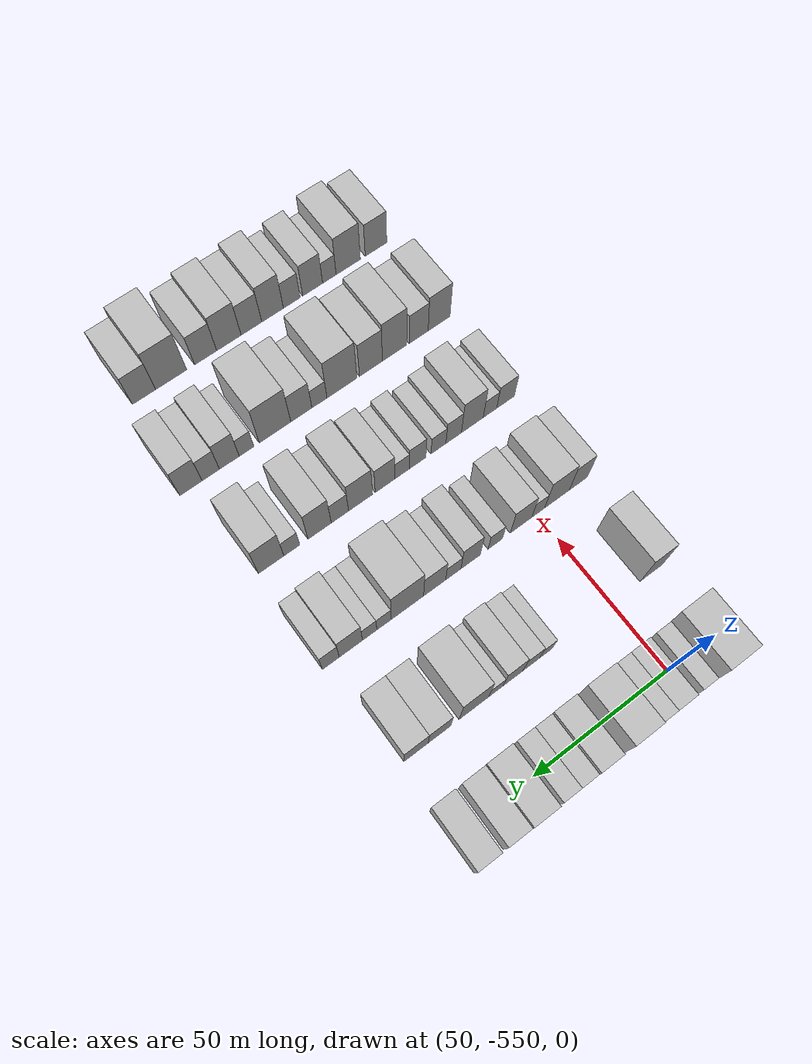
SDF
<sdf version="1.6">
 <world name="default">
  <model name="building_1">
   <static>1</static>
   <pose>50.0000 -562.3238 0 0.000000 0.000000 0.000000</pose>
   <link name="link">
    <pose>0 0 12.00 0 0 0</pose>
    <collision name="collision"><geometry><box><size>20.0000 11.3523 24.0000</size></box></geometry></collision>
    <visual name="visual">
     <cast_shadows>0</cast_shadows>
     <geometry><box><size>20.0000 11.3523 24.0000</size></box></geometry>
     <material>
      <script>
       <uri>model://HANNAS_wall/materials/scripts</uri>
       <uri>model://HANNAS_wall/materials/textures</uri>
       <name>vrc/HANNAS_wall</name>
      </script>
     </material>
    </visual>
   </link>
  </model>
  <model name="building_2">
   <static>1</static>
   <pose>50.0000 -553.8792 0 0.000000 0.000000 0.000000</pose>
   <link name="link">
    <pose>0 0 6.00 0 0 0</pose>
    <collision name="collision"><geometry><box><size>20.0000 5.5368 12.0000</size></box></geometry></collision>
    <visual name="visual">
     <cast_shadows>0</cast_shadows>
     <geometry><box><size>20.0000 5.5368 12.0000</size></box></geometry>
     <material>
      <script>
       <uri>model://HANNAS_wall/materials/scripts</uri>
       <uri>model://HANNAS_wall/materials/textures</uri>
       <name>vrc/HANNAS_wall</name>
      </script>
     </material>
    </visual>
   </link>
  </model>
  <model name="building_3">
   <static>1</static>
   <pose>50.0000 -544.5007 0 0.000000 0.000000 0.000000</pose>
   <link name="link">
    <pose>0 0 7.50 0 0 0</pose>
    <collision name="collision"><geometry><box><size>20.0000 7.2203 15.0000</size></box></geometry></collision>
    <visual name="visual">
     <cast_shadows>0</cast_shadows>
     <geometry><box><size>20.0000 7.2203 15.0000</size></box></geometry>
     <material>
      <script>
       <uri>model://HANNAS_wall/materials/scripts</uri>
       <uri>model://HANNAS_wall/materials/textures</uri>
       <name>vrc/HANNAS_wall</name>
      </script>
     </material>
    </visual>
   </link>
  </model>
  <model name="building_4">
   <static>1</static>
   <pose>50.0000 -537.5325 0 0.000000 0.000000 0.000000</pose>
   <link name="link">
    <pose>0 0 7.50 0 0 0</pose>
    <collision name="collision"><geometry><box><size>20.0000 6.7162 15.0000</size></box></geometry></collision>
    <visual name="visual">
     <cast_shadows>0</cast_shadows>
     <geometry><box><size>20.0000 6.7162 15.0000</size></box></geometry>
     <material>
      <script>
       <uri>model://HANNAS_wall/materials/scripts</uri>
       <uri>model://HANNAS_wall/materials/textures</uri>
       <name>vrc/HANNAS_wall</name>
      </script>
     </material>
    </visual>
   </link>
  </model>
  <model name="building_5">
   <static>1</static>
   <pose>50.0000 -528.9999 0 0.000000 0.000000 0.000000</pose>
   <link name="link">
    <pose>0 0 10.50 0 0 0</pose>
    <collision name="collision"><geometry><box><size>20.0000 10.3490 21.0000</size></box></geometry></collision>
    <visual name="visual">
     <cast_shadows>0</cast_shadows>
     <geometry><box><size>20.0000 10.3490 21.0000</size></box></geometry>
     <material>
      <script>
       <uri>model://HANNAS_wall/materials/scripts</uri>
       <uri>model://HANNAS_wall/materials/textures</uri>
       <name>vrc/HANNAS_wall</name>
      </script>
     </material>
    </visual>
   </link>
  </model>
  <model name="building_6">
   <static>1</static>
   <pose>50.0000 -516.7189 0 0.000000 0.000000 0.000000</pose>
   <link name="link">
    <pose>0 0 9.00 0 0 0</pose>
    <collision name="collision"><geometry><box><size>20.0000 8.2130 18.0000</size></box></geometry></collision>
    <visual name="visual">
     <cast_shadows>0</cast_shadows>
     <geometry><box><size>20.0000 8.2130 18.0000</size></box></geometry>
     <material>
      <script>
       <uri>model://HANNAS_wall/materials/scripts</uri>
       <uri>model://HANNAS_wall/materials/textures</uri>
       <name>vrc/HANNAS_wall</name>
      </script>
     </material>
    </visual>
   </link>
  </model>
  <model name="building_7">
   <static>1</static>
   <pose>50.0000 -509.5909 0 0.000000 0.000000 0.000000</pose>
   <link name="link">
    <pose>0 0 7.50 0 0 0</pose>
    <collision name="collision"><geometry><box><size>20.0000 6.0429 15.0000</size></box></geometry></collision>
    <visual name="visual">
     <cast_shadows>0</cast_shadows>
     <geometry><box><size>20.0000 6.0429 15.0000</size></box></geometry>
     <material>
      <script>
       <uri>model://HANNAS_wall/materials/scripts</uri>
       <uri>model://HANNAS_wall/materials/textures</uri>
       <name>vrc/HANNAS_wall</name>
      </script>
     </material>
    </visual>
   </link>
  </model>
  <model name="building_8">
   <static>1</static>
   <pose>50.0000 -503.3961 0 0.000000 0.000000 0.000000</pose>
   <link name="link">
    <pose>0 0 7.50 0 0 0</pose>
    <collision name="collision"><geometry><box><size>20.0000 6.3468 15.0000</size></box></geometry></collision>
    <visual name="visual">
     <cast_shadows>0</cast_shadows>
     <geometry><box><size>20.0000 6.3468 15.0000</size></box></geometry>
     <material>
      <script>
       <uri>model://HANNAS_wall/materials/scripts</uri>
       <uri>model://HANNAS_wall/materials/textures</uri>
       <name>vrc/HANNAS_wall</name>
      </script>
     </material>
    </visual>
   </link>
  </model>
  <model name="building_9">
   <static>1</static>
   <pose>50.0000 -493.7386 0 0.000000 0.000000 0.000000</pose>
   <link name="link">
    <pose>0 0 10.50 0 0 0</pose>
    <collision name="collision"><geometry><box><size>20.0000 8.9681 21.0000</size></box></geometry></collision>
    <visual name="visual">
     <cast_shadows>0</cast_shadows>
     <geometry><box><size>20.0000 8.9681 21.0000</size></box></geometry>
     <material>
      <script>
       <uri>model://HANNAS_wall/materials/scripts</uri>
       <uri>model://HANNAS_wall/materials/textures</uri>
       <name>vrc/HANNAS_wall</name>
      </script>
     </material>
    </visual>
   </link>
  </model>
  <model name="building_10">
   <static>1</static>
   <pose>50.0000 -485.2229 0 0.000000 0.000000 0.000000</pose>
   <link name="link">
    <pose>0 0 9.00 0 0 0</pose>
    <collision name="collision"><geometry><box><size>20.0000 8.0634 18.0000</size></box></geometry></collision>
    <visual name="visual">
     <cast_shadows>0</cast_shadows>
     <geometry><box><size>20.0000 8.0634 18.0000</size></box></geometry>
     <material>
      <script>
       <uri>model://HANNAS_wall/materials/scripts</uri>
       <uri>model://HANNAS_wall/materials/textures</uri>
       <name>vrc/HANNAS_wall</name>
      </script>
     </material>
    </visual>
   </link>
  </model>
  <model name="building_11">
   <static>1</static>
   <pose>50.0000 -475.1178 0 0.000000 0.000000 0.000000</pose>
   <link name="link">
    <pose>0 0 9.00 0 0 0</pose>
    <collision name="collision"><geometry><box><size>20.0000 8.1467 18.0000</size></box></geometry></collision>
    <visual name="visual">
     <cast_shadows>0</cast_shadows>
     <geometry><box><size>20.0000 8.1467 18.0000</size></box></geometry>
     <material>
      <script>
       <uri>model://HANNAS_wall/materials/scripts</uri>
       <uri>model://HANNAS_wall/materials/textures</uri>
       <name>vrc/HANNAS_wall</name>
      </script>
     </material>
    </visual>
   </link>
  </model>
  <model name="building_127">
   <static>1</static>
   <pose>85.0000 -565.6009 0 0.000000 0.000000 0.000000</pose>
   <link name="link">
    <pose>0 0 10.50 0 0 0</pose>
    <collision name="collision"><geometry><box><size>20.0000 8.7983 21.0000</size></box></geometry></collision>
    <visual name="visual">
     <cast_shadows>0</cast_shadows>
     <geometry><box><size>20.0000 8.7983 21.0000</size></box></geometry>
     <material>
      <script>
       <uri>model://HANNAS_wall/materials/scripts</uri>
       <uri>model://HANNAS_wall/materials/textures</uri>
       <name>vrc/HANNAS_wall</name>
      </script>
     </material>
    </visual>
   </link>
  </model>
  <model name="building_128">
   <static>1</static>
   <pose>85.0000 -524.8946 0 0.000000 0.000000 0.000000</pose>
   <link name="link">
    <pose>0 0 6.00 0 0 0</pose>
    <collision name="collision"><geometry><box><size>20.0000 4.8714 12.0000</size></box></geometry></collision>
    <visual name="visual">
     <cast_shadows>0</cast_shadows>
     <geometry><box><size>20.0000 4.8714 12.0000</size></box></geometry>
     <material>
      <script>
       <uri>model://HANNAS_wall/materials/scripts</uri>
       <uri>model://HANNAS_wall/materials/textures</uri>
       <name>vrc/HANNAS_wall</name>
      </script>
     </material>
    </visual>
   </link>
  </model>
  <model name="building_129">
   <static>1</static>
   <pose>85.0000 -519.3416 0 0.000000 0.000000 0.000000</pose>
   <link name="link">
    <pose>0 0 7.50 0 0 0</pose>
    <collision name="collision"><geometry><box><size>20.0000 6.2346 15.0000</size></box></geometry></collision>
    <visual name="visual">
     <cast_shadows>0</cast_shadows>
     <geometry><box><size>20.0000 6.2346 15.0000</size></box></geometry>
     <material>
      <script>
       <uri>model://HANNAS_wall/materials/scripts</uri>
       <uri>model://HANNAS_wall/materials/textures</uri>
       <name>vrc/HANNAS_wall</name>
      </script>
     </material>
    </visual>
   </link>
  </model>
  <model name="building_130">
   <static>1</static>
   <pose>85.0000 -512.5142 0 0.000000 0.000000 0.000000</pose>
   <link name="link">
    <pose>0 0 9.00 0 0 0</pose>
    <collision name="collision"><geometry><box><size>20.0000 7.4202 18.0000</size></box></geometry></collision>
    <visual name="visual">
     <cast_shadows>0</cast_shadows>
     <geometry><box><size>20.0000 7.4202 18.0000</size></box></geometry>
     <material>
      <script>
       <uri>model://HANNAS_wall/materials/scripts</uri>
       <uri>model://HANNAS_wall/materials/textures</uri>
       <name>vrc/HANNAS_wall</name>
      </script>
     </material>
    </visual>
   </link>
  </model>
  <model name="building_131">
   <static>1</static>
   <pose>85.0000 -506.1411 0 0.000000 0.000000 0.000000</pose>
   <link name="link">
    <pose>0 0 6.00 0 0 0</pose>
    <collision name="collision"><geometry><box><size>20.0000 5.3259 12.0000</size></box></geometry></collision>
    <visual name="visual">
     <cast_shadows>0</cast_shadows>
     <geometry><box><size>20.0000 5.3259 12.0000</size></box></geometry>
     <material>
      <script>
       <uri>model://HANNAS_wall/materials/scripts</uri>
       <uri>model://HANNAS_wall/materials/textures</uri>
       <name>vrc/HANNAS_wall</name>
      </script>
     </material>
    </visual>
   </link>
  </model>
  <model name="building_132">
   <static>1</static>
   <pose>85.0000 -498.1919 0 0.000000 0.000000 0.000000</pose>
   <link name="link">
    <pose>0 0 12.00 0 0 0</pose>
    <collision name="collision"><geometry><box><size>20.0000 10.5726 24.0000</size></box></geometry></collision>
    <visual name="visual">
     <cast_shadows>0</cast_shadows>
     <geometry><box><size>20.0000 10.5726 24.0000</size></box></geometry>
     <material>
      <script>
       <uri>model://HANNAS_wall/materials/scripts</uri>
       <uri>model://HANNAS_wall/materials/textures</uri>
       <name>vrc/HANNAS_wall</name>
      </script>
     </material>
    </visual>
   </link>
  </model>
  <model name="building_133">
   <static>1</static>
   <pose>85.0000 -485.8821 0 0.000000 0.000000 0.000000</pose>
   <link name="link">
    <pose>0 0 9.00 0 0 0</pose>
    <collision name="collision"><geometry><box><size>20.0000 8.0468 18.0000</size></box></geometry></collision>
    <visual name="visual">
     <cast_shadows>0</cast_shadows>
     <geometry><box><size>20.0000 8.0468 18.0000</size></box></geometry>
     <material>
      <script>
       <uri>model://HANNAS_wall/materials/scripts</uri>
       <uri>model://HANNAS_wall/materials/textures</uri>
       <name>vrc/HANNAS_wall</name>
      </script>
     </material>
    </visual>
   </link>
  </model>
  <model name="building_134">
   <static>1</static>
   <pose>85.0000 -477.5785 0 0.000000 0.000000 0.000000</pose>
   <link name="link">
    <pose>0 0 9.00 0 0 0</pose>
    <collision name="collision"><geometry><box><size>20.0000 8.5605 18.0000</size></box></geometry></collision>
    <visual name="visual">
     <cast_shadows>0</cast_shadows>
     <geometry><box><size>20.0000 8.5605 18.0000</size></box></geometry>
     <material>
      <script>
       <uri>model://HANNAS_wall/materials/scripts</uri>
       <uri>model://HANNAS_wall/materials/textures</uri>
       <name>vrc/HANNAS_wall</name>
      </script>
     </material>
    </visual>
   </link>
  </model>
  <model name="building_247">
   <static>1</static>
   <pose>120.0000 -566.3362 0 0.000000 0.000000 0.000000</pose>
   <link name="link">
    <pose>0 0 9.00 0 0 0</pose>
    <collision name="collision"><geometry><box><size>20.0000 7.3275 18.0000</size></box></geometry></collision>
    <visual name="visual">
     <cast_shadows>0</cast_shadows>
     <geometry><box><size>20.0000 7.3275 18.0000</size></box></geometry>
     <material>
      <script>
       <uri>model://HANNAS_wall/materials/scripts</uri>
       <uri>model://HANNAS_wall/materials/textures</uri>
       <name>vrc/HANNAS_wall</name>
      </script>
     </material>
    </visual>
   </link>
  </model>
  <model name="building_248">
   <static>1</static>
   <pose>120.0000 -557.7643 0 0.000000 0.000000 0.000000</pose>
   <link name="link">
    <pose>0 0 10.50 0 0 0</pose>
    <collision name="collision"><geometry><box><size>20.0000 9.8164 21.0000</size></box></geometry></collision>
    <visual name="visual">
     <cast_shadows>0</cast_shadows>
     <geometry><box><size>20.0000 9.8164 21.0000</size></box></geometry>
     <material>
      <script>
       <uri>model://HANNAS_wall/materials/scripts</uri>
       <uri>model://HANNAS_wall/materials/textures</uri>
       <name>vrc/HANNAS_wall</name>
      </script>
     </material>
    </visual>
   </link>
  </model>
  <model name="building_249">
   <static>1</static>
   <pose>120.0000 -550.3640 0 0.000000 0.000000 0.000000</pose>
   <link name="link">
    <pose>0 0 6.00 0 0 0</pose>
    <collision name="collision"><geometry><box><size>20.0000 4.9840 12.0000</size></box></geometry></collision>
    <visual name="visual">
     <cast_shadows>0</cast_shadows>
     <geometry><box><size>20.0000 4.9840 12.0000</size></box></geometry>
     <material>
      <script>
       <uri>model://HANNAS_wall/materials/scripts</uri>
       <uri>model://HANNAS_wall/materials/textures</uri>
       <name>vrc/HANNAS_wall</name>
      </script>
     </material>
    </visual>
   </link>
  </model>
  <model name="building_250">
   <static>1</static>
   <pose>120.0000 -543.6661 0 0.000000 0.000000 0.000000</pose>
   <link name="link">
    <pose>0 0 9.00 0 0 0</pose>
    <collision name="collision"><geometry><box><size>20.0000 8.4117 18.0000</size></box></geometry></collision>
    <visual name="visual">
     <cast_shadows>0</cast_shadows>
     <geometry><box><size>20.0000 8.4117 18.0000</size></box></geometry>
     <material>
      <script>
       <uri>model://HANNAS_wall/materials/scripts</uri>
       <uri>model://HANNAS_wall/materials/textures</uri>
       <name>vrc/HANNAS_wall</name>
      </script>
     </material>
    </visual>
   </link>
  </model>
  <model name="building_251">
   <static>1</static>
   <pose>120.0000 -533.6906 0 0.000000 0.000000 0.000000</pose>
   <link name="link">
    <pose>0 0 6.00 0 0 0</pose>
    <collision name="collision"><geometry><box><size>20.0000 5.5394 12.0000</size></box></geometry></collision>
    <visual name="visual">
     <cast_shadows>0</cast_shadows>
     <geometry><box><size>20.0000 5.5394 12.0000</size></box></geometry>
     <material>
      <script>
       <uri>model://HANNAS_wall/materials/scripts</uri>
       <uri>model://HANNAS_wall/materials/textures</uri>
       <name>vrc/HANNAS_wall</name>
      </script>
     </material>
    </visual>
   </link>
  </model>
  <model name="building_252">
   <static>1</static>
   <pose>120.0000 -524.2182 0 0.000000 0.000000 0.000000</pose>
   <link name="link">
    <pose>0 0 9.00 0 0 0</pose>
    <collision name="collision"><geometry><box><size>20.0000 7.4052 18.0000</size></box></geometry></collision>
    <visual name="visual">
     <cast_shadows>0</cast_shadows>
     <geometry><box><size>20.0000 7.4052 18.0000</size></box></geometry>
     <material>
      <script>
       <uri>model://HANNAS_wall/materials/scripts</uri>
       <uri>model://HANNAS_wall/materials/textures</uri>
       <name>vrc/HANNAS_wall</name>
      </script>
     </material>
    </visual>
   </link>
  </model>
  <model name="building_253">
   <static>1</static>
   <pose>120.0000 -517.6586 0 0.000000 0.000000 0.000000</pose>
   <link name="link">
    <pose>0 0 6.00 0 0 0</pose>
    <collision name="collision"><geometry><box><size>20.0000 5.7141 12.0000</size></box></geometry></collision>
    <visual name="visual">
     <cast_shadows>0</cast_shadows>
     <geometry><box><size>20.0000 5.7141 12.0000</size></box></geometry>
     <material>
      <script>
       <uri>model://HANNAS_wall/materials/scripts</uri>
       <uri>model://HANNAS_wall/materials/textures</uri>
       <name>vrc/HANNAS_wall</name>
      </script>
     </material>
    </visual>
   </link>
  </model>
  <model name="building_254">
   <static>1</static>
   <pose>120.0000 -510.6552 0 0.000000 0.000000 0.000000</pose>
   <link name="link">
    <pose>0 0 9.00 0 0 0</pose>
    <collision name="collision"><geometry><box><size>20.0000 8.2926 18.0000</size></box></geometry></collision>
    <visual name="visual">
     <cast_shadows>0</cast_shadows>
     <geometry><box><size>20.0000 8.2926 18.0000</size></box></geometry>
     <material>
      <script>
       <uri>model://HANNAS_wall/materials/scripts</uri>
       <uri>model://HANNAS_wall/materials/textures</uri>
       <name>vrc/HANNAS_wall</name>
      </script>
     </material>
    </visual>
   </link>
  </model>
  <model name="building_255">
   <static>1</static>
   <pose>120.0000 -500.5553 0 0.000000 0.000000 0.000000</pose>
   <link name="link">
    <pose>0 0 12.00 0 0 0</pose>
    <collision name="collision"><geometry><box><size>20.0000 11.9072 24.0000</size></box></geometry></collision>
    <visual name="visual">
     <cast_shadows>0</cast_shadows>
     <geometry><box><size>20.0000 11.9072 24.0000</size></box></geometry>
     <material>
      <script>
       <uri>model://HANNAS_wall/materials/scripts</uri>
       <uri>model://HANNAS_wall/materials/textures</uri>
       <name>vrc/HANNAS_wall</name>
      </script>
     </material>
    </visual>
   </link>
  </model>
  <model name="building_256">
   <static>1</static>
   <pose>120.0000 -491.9775 0 0.000000 0.000000 0.000000</pose>
   <link name="link">
    <pose>0 0 6.00 0 0 0</pose>
    <collision name="collision"><geometry><box><size>20.0000 5.2485 12.0000</size></box></geometry></collision>
    <visual name="visual">
     <cast_shadows>0</cast_shadows>
     <geometry><box><size>20.0000 5.2485 12.0000</size></box></geometry>
     <material>
      <script>
       <uri>model://HANNAS_wall/materials/scripts</uri>
       <uri>model://HANNAS_wall/materials/textures</uri>
       <name>vrc/HANNAS_wall</name>
      </script>
     </material>
    </visual>
   </link>
  </model>
  <model name="building_257">
   <static>1</static>
   <pose>120.0000 -486.7453 0 0.000000 0.000000 0.000000</pose>
   <link name="link">
    <pose>0 0 6.00 0 0 0</pose>
    <collision name="collision"><geometry><box><size>20.0000 5.2160 12.0000</size></box></geometry></collision>
    <visual name="visual">
     <cast_shadows>0</cast_shadows>
     <geometry><box><size>20.0000 5.2160 12.0000</size></box></geometry>
     <material>
      <script>
       <uri>model://HANNAS_wall/materials/scripts</uri>
       <uri>model://HANNAS_wall/materials/textures</uri>
       <name>vrc/HANNAS_wall</name>
      </script>
     </material>
    </visual>
   </link>
  </model>
  <model name="building_258">
   <static>1</static>
   <pose>120.0000 -479.9968 0 0.000000 0.000000 0.000000</pose>
   <link name="link">
    <pose>0 0 9.00 0 0 0</pose>
    <collision name="collision"><geometry><box><size>20.0000 8.2809 18.0000</size></box></geometry></collision>
    <visual name="visual">
     <cast_shadows>0</cast_shadows>
     <geometry><box><size>20.0000 8.2809 18.0000</size></box></geometry>
     <material>
      <script>
       <uri>model://HANNAS_wall/materials/scripts</uri>
       <uri>model://HANNAS_wall/materials/textures</uri>
       <name>vrc/HANNAS_wall</name>
      </script>
     </material>
    </visual>
   </link>
  </model>
  <model name="building_259">
   <static>1</static>
   <pose>120.0000 -472.8358 0 0.000000 0.000000 0.000000</pose>
   <link name="link">
    <pose>0 0 7.50 0 0 0</pose>
    <collision name="collision"><geometry><box><size>20.0000 6.0411 15.0000</size></box></geometry></collision>
    <visual name="visual">
     <cast_shadows>0</cast_shadows>
     <geometry><box><size>20.0000 6.0411 15.0000</size></box></geometry>
     <material>
      <script>
       <uri>model://HANNAS_wall/materials/scripts</uri>
       <uri>model://HANNAS_wall/materials/textures</uri>
       <name>vrc/HANNAS_wall</name>
      </script>
     </material>
    </visual>
   </link>
  </model>
  <model name="building_373">
   <static>1</static>
   <pose>155.0000 -565.4442 0 0.000000 0.000000 0.000000</pose>
   <link name="link">
    <pose>0 0 7.50 0 0 0</pose>
    <collision name="collision"><geometry><box><size>20.0000 7.1115 15.0000</size></box></geometry></collision>
    <visual name="visual">
     <cast_shadows>0</cast_shadows>
     <geometry><box><size>20.0000 7.1115 15.0000</size></box></geometry>
     <material>
      <script>
       <uri>model://HANNAS_wall/materials/scripts</uri>
       <uri>model://HANNAS_wall/materials/textures</uri>
       <name>vrc/HANNAS_wall</name>
      </script>
     </material>
    </visual>
   </link>
  </model>
  <model name="building_374">
   <static>1</static>
   <pose>155.0000 -559.1676 0 0.000000 0.000000 0.000000</pose>
   <link name="link">
    <pose>0 0 6.00 0 0 0</pose>
    <collision name="collision"><geometry><box><size>20.0000 5.4419 12.0000</size></box></geometry></collision>
    <visual name="visual">
     <cast_shadows>0</cast_shadows>
     <geometry><box><size>20.0000 5.4419 12.0000</size></box></geometry>
     <material>
      <script>
       <uri>model://HANNAS_wall/materials/scripts</uri>
       <uri>model://HANNAS_wall/materials/textures</uri>
       <name>vrc/HANNAS_wall</name>
      </script>
     </material>
    </visual>
   </link>
  </model>
  <model name="building_375">
   <static>1</static>
   <pose>155.0000 -552.0836 0 0.000000 0.000000 0.000000</pose>
   <link name="link">
    <pose>0 0 10.50 0 0 0</pose>
    <collision name="collision"><geometry><box><size>20.0000 8.7260 21.0000</size></box></geometry></collision>
    <visual name="visual">
     <cast_shadows>0</cast_shadows>
     <geometry><box><size>20.0000 8.7260 21.0000</size></box></geometry>
     <material>
      <script>
       <uri>model://HANNAS_wall/materials/scripts</uri>
       <uri>model://HANNAS_wall/materials/textures</uri>
       <name>vrc/HANNAS_wall</name>
      </script>
     </material>
    </visual>
   </link>
  </model>
  <model name="building_376">
   <static>1</static>
   <pose>155.0000 -544.6669 0 0.000000 0.000000 0.000000</pose>
   <link name="link">
    <pose>0 0 7.50 0 0 0</pose>
    <collision name="collision"><geometry><box><size>20.0000 6.1074 15.0000</size></box></geometry></collision>
    <visual name="visual">
     <cast_shadows>0</cast_shadows>
     <geometry><box><size>20.0000 6.1074 15.0000</size></box></geometry>
     <material>
      <script>
       <uri>model://HANNAS_wall/materials/scripts</uri>
       <uri>model://HANNAS_wall/materials/textures</uri>
       <name>vrc/HANNAS_wall</name>
      </script>
     </material>
    </visual>
   </link>
  </model>
  <model name="building_377">
   <static>1</static>
   <pose>155.0000 -538.6871 0 0.000000 0.000000 0.000000</pose>
   <link name="link">
    <pose>0 0 6.00 0 0 0</pose>
    <collision name="collision"><geometry><box><size>20.0000 5.8523 12.0000</size></box></geometry></collision>
    <visual name="visual">
     <cast_shadows>0</cast_shadows>
     <geometry><box><size>20.0000 5.8523 12.0000</size></box></geometry>
     <material>
      <script>
       <uri>model://HANNAS_wall/materials/scripts</uri>
       <uri>model://HANNAS_wall/materials/textures</uri>
       <name>vrc/HANNAS_wall</name>
      </script>
     </material>
    </visual>
   </link>
  </model>
  <model name="building_378">
   <static>1</static>
   <pose>155.0000 -530.5755 0 0.000000 0.000000 0.000000</pose>
   <link name="link">
    <pose>0 0 7.50 0 0 0</pose>
    <collision name="collision"><geometry><box><size>20.0000 6.3709 15.0000</size></box></geometry></collision>
    <visual name="visual">
     <cast_shadows>0</cast_shadows>
     <geometry><box><size>20.0000 6.3709 15.0000</size></box></geometry>
     <material>
      <script>
       <uri>model://HANNAS_wall/materials/scripts</uri>
       <uri>model://HANNAS_wall/materials/textures</uri>
       <name>vrc/HANNAS_wall</name>
      </script>
     </material>
    </visual>
   </link>
  </model>
  <model name="building_379">
   <static>1</static>
   <pose>155.0000 -524.5990 0 0.000000 0.000000 0.000000</pose>
   <link name="link">
    <pose>0 0 6.00 0 0 0</pose>
    <collision name="collision"><geometry><box><size>20.0000 5.5821 12.0000</size></box></geometry></collision>
    <visual name="visual">
     <cast_shadows>0</cast_shadows>
     <geometry><box><size>20.0000 5.5821 12.0000</size></box></geometry>
     <material>
      <script>
       <uri>model://HANNAS_wall/materials/scripts</uri>
       <uri>model://HANNAS_wall/materials/textures</uri>
       <name>vrc/HANNAS_wall</name>
      </script>
     </material>
    </visual>
   </link>
  </model>
  <model name="building_380">
   <static>1</static>
   <pose>155.0000 -518.0302 0 0.000000 0.000000 0.000000</pose>
   <link name="link">
    <pose>0 0 9.00 0 0 0</pose>
    <collision name="collision"><geometry><box><size>20.0000 7.5555 18.0000</size></box></geometry></collision>
    <visual name="visual">
     <cast_shadows>0</cast_shadows>
     <geometry><box><size>20.0000 7.5555 18.0000</size></box></geometry>
     <material>
      <script>
       <uri>model://HANNAS_wall/materials/scripts</uri>
       <uri>model://HANNAS_wall/materials/textures</uri>
       <name>vrc/HANNAS_wall</name>
      </script>
     </material>
    </visual>
   </link>
  </model>
  <model name="building_381">
   <static>1</static>
   <pose>155.0000 -508.7044 0 0.000000 0.000000 0.000000</pose>
   <link name="link">
    <pose>0 0 10.50 0 0 0</pose>
    <collision name="collision"><geometry><box><size>20.0000 9.0959 21.0000</size></box></geometry></collision>
    <visual name="visual">
     <cast_shadows>0</cast_shadows>
     <geometry><box><size>20.0000 9.0959 21.0000</size></box></geometry>
     <material>
      <script>
       <uri>model://HANNAS_wall/materials/scripts</uri>
       <uri>model://HANNAS_wall/materials/textures</uri>
       <name>vrc/HANNAS_wall</name>
      </script>
     </material>
    </visual>
   </link>
  </model>
  <model name="building_382">
   <static>1</static>
   <pose>155.0000 -500.9157 0 0.000000 0.000000 0.000000</pose>
   <link name="link">
    <pose>0 0 7.50 0 0 0</pose>
    <collision name="collision"><geometry><box><size>20.0000 6.4814 15.0000</size></box></geometry></collision>
    <visual name="visual">
     <cast_shadows>0</cast_shadows>
     <geometry><box><size>20.0000 6.4814 15.0000</size></box></geometry>
     <material>
      <script>
       <uri>model://HANNAS_wall/materials/scripts</uri>
       <uri>model://HANNAS_wall/materials/textures</uri>
       <name>vrc/HANNAS_wall</name>
      </script>
     </material>
    </visual>
   </link>
  </model>
  <model name="building_383">
   <static>1</static>
   <pose>155.0000 -493.3491 0 0.000000 0.000000 0.000000</pose>
   <link name="link">
    <pose>0 0 10.50 0 0 0</pose>
    <collision name="collision"><geometry><box><size>20.0000 8.6519 21.0000</size></box></geometry></collision>
    <visual name="visual">
     <cast_shadows>0</cast_shadows>
     <geometry><box><size>20.0000 8.6519 21.0000</size></box></geometry>
     <material>
      <script>
       <uri>model://HANNAS_wall/materials/scripts</uri>
       <uri>model://HANNAS_wall/materials/textures</uri>
       <name>vrc/HANNAS_wall</name>
      </script>
     </material>
    </visual>
   </link>
  </model>
  <model name="building_384">
   <static>1</static>
   <pose>155.0000 -483.1150 0 0.000000 0.000000 0.000000</pose>
   <link name="link">
    <pose>0 0 6.00 0 0 0</pose>
    <collision name="collision"><geometry><box><size>20.0000 5.8162 12.0000</size></box></geometry></collision>
    <visual name="visual">
     <cast_shadows>0</cast_shadows>
     <geometry><box><size>20.0000 5.8162 12.0000</size></box></geometry>
     <material>
      <script>
       <uri>model://HANNAS_wall/materials/scripts</uri>
       <uri>model://HANNAS_wall/materials/textures</uri>
       <name>vrc/HANNAS_wall</name>
      </script>
     </material>
    </visual>
   </link>
  </model>
  <model name="building_385">
   <static>1</static>
   <pose>155.0000 -475.5812 0 0.000000 0.000000 0.000000</pose>
   <link name="link">
    <pose>0 0 10.50 0 0 0</pose>
    <collision name="collision"><geometry><box><size>20.0000 9.2514 21.0000</size></box></geometry></collision>
    <visual name="visual">
     <cast_shadows>0</cast_shadows>
     <geometry><box><size>20.0000 9.2514 21.0000</size></box></geometry>
     <material>
      <script>
       <uri>model://HANNAS_wall/materials/scripts</uri>
       <uri>model://HANNAS_wall/materials/textures</uri>
       <name>vrc/HANNAS_wall</name>
      </script>
     </material>
    </visual>
   </link>
  </model>
  <model name="building_495">
   <static>1</static>
   <pose>190.0000 -565.5214 0 0.000000 0.000000 0.000000</pose>
   <link name="link">
    <pose>0 0 10.50 0 0 0</pose>
    <collision name="collision"><geometry><box><size>20.0000 8.9572 21.0000</size></box></geometry></collision>
    <visual name="visual">
     <cast_shadows>0</cast_shadows>
     <geometry><box><size>20.0000 8.9572 21.0000</size></box></geometry>
     <material>
      <script>
       <uri>model://HANNAS_wall/materials/scripts</uri>
       <uri>model://HANNAS_wall/materials/textures</uri>
       <name>vrc/HANNAS_wall</name>
      </script>
     </material>
    </visual>
   </link>
  </model>
  <model name="building_496">
   <static>1</static>
   <pose>190.0000 -557.1911 0 0.000000 0.000000 0.000000</pose>
   <link name="link">
    <pose>0 0 9.00 0 0 0</pose>
    <collision name="collision"><geometry><box><size>20.0000 7.7033 18.0000</size></box></geometry></collision>
    <visual name="visual">
     <cast_shadows>0</cast_shadows>
     <geometry><box><size>20.0000 7.7033 18.0000</size></box></geometry>
     <material>
      <script>
       <uri>model://HANNAS_wall/materials/scripts</uri>
       <uri>model://HANNAS_wall/materials/textures</uri>
       <name>vrc/HANNAS_wall</name>
      </script>
     </material>
    </visual>
   </link>
  </model>
  <model name="building_497">
   <static>1</static>
   <pose>190.0000 -547.4751 0 0.000000 0.000000 0.000000</pose>
   <link name="link">
    <pose>0 0 12.00 0 0 0</pose>
    <collision name="collision"><geometry><box><size>20.0000 9.7288 24.0000</size></box></geometry></collision>
    <visual name="visual">
     <cast_shadows>0</cast_shadows>
     <geometry><box><size>20.0000 9.7288 24.0000</size></box></geometry>
     <material>
      <script>
       <uri>model://HANNAS_wall/materials/scripts</uri>
       <uri>model://HANNAS_wall/materials/textures</uri>
       <name>vrc/HANNAS_wall</name>
      </script>
     </material>
    </visual>
   </link>
  </model>
  <model name="building_498">
   <static>1</static>
   <pose>190.0000 -538.0414 0 0.000000 0.000000 0.000000</pose>
   <link name="link">
    <pose>0 0 10.50 0 0 0</pose>
    <collision name="collision"><geometry><box><size>20.0000 9.1387 21.0000</size></box></geometry></collision>
    <visual name="visual">
     <cast_shadows>0</cast_shadows>
     <geometry><box><size>20.0000 9.1387 21.0000</size></box></geometry>
     <material>
      <script>
       <uri>model://HANNAS_wall/materials/scripts</uri>
       <uri>model://HANNAS_wall/materials/textures</uri>
       <name>vrc/HANNAS_wall</name>
      </script>
     </material>
    </visual>
   </link>
  </model>
  <model name="building_499">
   <static>1</static>
   <pose>190.0000 -526.5962 0 0.000000 0.000000 0.000000</pose>
   <link name="link">
    <pose>0 0 12.00 0 0 0</pose>
    <collision name="collision"><geometry><box><size>20.0000 11.7518 24.0000</size></box></geometry></collision>
    <visual name="visual">
     <cast_shadows>0</cast_shadows>
     <geometry><box><size>20.0000 11.7518 24.0000</size></box></geometry>
     <material>
      <script>
       <uri>model://HANNAS_wall/materials/scripts</uri>
       <uri>model://HANNAS_wall/materials/textures</uri>
       <name>vrc/HANNAS_wall</name>
      </script>
     </material>
    </visual>
   </link>
  </model>
  <model name="building_500">
   <static>1</static>
   <pose>190.0000 -517.8050 0 0.000000 0.000000 0.000000</pose>
   <link name="link">
    <pose>0 0 6.00 0 0 0</pose>
    <collision name="collision"><geometry><box><size>20.0000 5.8305 12.0000</size></box></geometry></collision>
    <visual name="visual">
     <cast_shadows>0</cast_shadows>
     <geometry><box><size>20.0000 5.8305 12.0000</size></box></geometry>
     <material>
      <script>
       <uri>model://HANNAS_wall/materials/scripts</uri>
       <uri>model://HANNAS_wall/materials/textures</uri>
       <name>vrc/HANNAS_wall</name>
      </script>
     </material>
    </visual>
   </link>
  </model>
  <model name="building_501">
   <static>1</static>
   <pose>190.0000 -510.8318 0 0.000000 0.000000 0.000000</pose>
   <link name="link">
    <pose>0 0 9.00 0 0 0</pose>
    <collision name="collision"><geometry><box><size>20.0000 8.1160 18.0000</size></box></geometry></collision>
    <visual name="visual">
     <cast_shadows>0</cast_shadows>
     <geometry><box><size>20.0000 8.1160 18.0000</size></box></geometry>
     <material>
      <script>
       <uri>model://HANNAS_wall/materials/scripts</uri>
       <uri>model://HANNAS_wall/materials/textures</uri>
       <name>vrc/HANNAS_wall</name>
      </script>
     </material>
    </visual>
   </link>
  </model>
  <model name="building_502">
   <static>1</static>
   <pose>190.0000 -500.7745 0 0.000000 0.000000 0.000000</pose>
   <link name="link">
    <pose>0 0 12.00 0 0 0</pose>
    <collision name="collision"><geometry><box><size>20.0000 11.9985 24.0000</size></box></geometry></collision>
    <visual name="visual">
     <cast_shadows>0</cast_shadows>
     <geometry><box><size>20.0000 11.9985 24.0000</size></box></geometry>
     <material>
      <script>
       <uri>model://HANNAS_wall/materials/scripts</uri>
       <uri>model://HANNAS_wall/materials/textures</uri>
       <name>vrc/HANNAS_wall</name>
      </script>
     </material>
    </visual>
   </link>
  </model>
  <model name="building_503">
   <static>1</static>
   <pose>190.0000 -490.0362 0 0.000000 0.000000 0.000000</pose>
   <link name="link">
    <pose>0 0 6.00 0 0 0</pose>
    <collision name="collision"><geometry><box><size>20.0000 5.4782 12.0000</size></box></geometry></collision>
    <visual name="visual">
     <cast_shadows>0</cast_shadows>
     <geometry><box><size>20.0000 5.4782 12.0000</size></box></geometry>
     <material>
      <script>
       <uri>model://HANNAS_wall/materials/scripts</uri>
       <uri>model://HANNAS_wall/materials/textures</uri>
       <name>vrc/HANNAS_wall</name>
      </script>
     </material>
    </visual>
   </link>
  </model>
  <model name="building_504">
   <static>1</static>
   <pose>190.0000 -483.6274 0 0.000000 0.000000 0.000000</pose>
   <link name="link">
    <pose>0 0 9.00 0 0 0</pose>
    <collision name="collision"><geometry><box><size>20.0000 7.3394 18.0000</size></box></geometry></collision>
    <visual name="visual">
     <cast_shadows>0</cast_shadows>
     <geometry><box><size>20.0000 7.3394 18.0000</size></box></geometry>
     <material>
      <script>
       <uri>model://HANNAS_wall/materials/scripts</uri>
       <uri>model://HANNAS_wall/materials/textures</uri>
       <name>vrc/HANNAS_wall</name>
      </script>
     </material>
    </visual>
   </link>
  </model>
  <model name="building_505">
   <static>1</static>
   <pose>190.0000 -476.7442 0 0.000000 0.000000 0.000000</pose>
   <link name="link">
    <pose>0 0 7.50 0 0 0</pose>
    <collision name="collision"><geometry><box><size>20.0000 6.4271 15.0000</size></box></geometry></collision>
    <visual name="visual">
     <cast_shadows>0</cast_shadows>
     <geometry><box><size>20.0000 6.4271 15.0000</size></box></geometry>
     <material>
      <script>
       <uri>model://HANNAS_wall/materials/scripts</uri>
       <uri>model://HANNAS_wall/materials/textures</uri>
       <name>vrc/HANNAS_wall</name>
      </script>
     </material>
    </visual>
   </link>
  </model>
  <model name="building_506">
   <static>1</static>
   <pose>190.0000 -469.4486 0 0.000000 0.000000 0.000000</pose>
   <link name="link">
    <pose>0 0 9.00 0 0 0</pose>
    <collision name="collision"><geometry><box><size>20.0000 8.1640 18.0000</size></box></geometry></collision>
    <visual name="visual">
     <cast_shadows>0</cast_shadows>
     <geometry><box><size>20.0000 8.1640 18.0000</size></box></geometry>
     <material>
      <script>
       <uri>model://HANNAS_wall/materials/scripts</uri>
       <uri>model://HANNAS_wall/materials/textures</uri>
       <name>vrc/HANNAS_wall</name>
      </script>
     </material>
    </visual>
   </link>
  </model>
  <model name="building_621">
   <static>1</static>
   <pose>225.0000 -565.5274 0 0.000000 0.000000 0.000000</pose>
   <link name="link">
    <pose>0 0 9.00 0 0 0</pose>
    <collision name="collision"><geometry><box><size>20.0000 8.9452 18.0000</size></box></geometry></collision>
    <visual name="visual">
     <cast_shadows>0</cast_shadows>
     <geometry><box><size>20.0000 8.9452 18.0000</size></box></geometry>
     <material>
      <script>
       <uri>model://HANNAS_wall/materials/scripts</uri>
       <uri>model://HANNAS_wall/materials/textures</uri>
       <name>vrc/HANNAS_wall</name>
      </script>
     </material>
    </visual>
   </link>
  </model>
  <model name="building_622">
   <static>1</static>
   <pose>225.0000 -554.0869 0 0.000000 0.000000 0.000000</pose>
   <link name="link">
    <pose>0 0 10.50 0 0 0</pose>
    <collision name="collision"><geometry><box><size>20.0000 9.9358 21.0000</size></box></geometry></collision>
    <visual name="visual">
     <cast_shadows>0</cast_shadows>
     <geometry><box><size>20.0000 9.9358 21.0000</size></box></geometry>
     <material>
      <script>
       <uri>model://HANNAS_wall/materials/scripts</uri>
       <uri>model://HANNAS_wall/materials/textures</uri>
       <name>vrc/HANNAS_wall</name>
      </script>
     </material>
    </visual>
   </link>
  </model>
  <model name="building_623">
   <static>1</static>
   <pose>225.0000 -546.3599 0 0.000000 0.000000 0.000000</pose>
   <link name="link">
    <pose>0 0 6.00 0 0 0</pose>
    <collision name="collision"><geometry><box><size>20.0000 5.5183 12.0000</size></box></geometry></collision>
    <visual name="visual">
     <cast_shadows>0</cast_shadows>
     <geometry><box><size>20.0000 5.5183 12.0000</size></box></geometry>
     <material>
      <script>
       <uri>model://HANNAS_wall/materials/scripts</uri>
       <uri>model://HANNAS_wall/materials/textures</uri>
       <name>vrc/HANNAS_wall</name>
      </script>
     </material>
    </visual>
   </link>
  </model>
  <model name="building_624">
   <static>1</static>
   <pose>225.0000 -539.5913 0 0.000000 0.000000 0.000000</pose>
   <link name="link">
    <pose>0 0 9.00 0 0 0</pose>
    <collision name="collision"><geometry><box><size>20.0000 8.0188 18.0000</size></box></geometry></collision>
    <visual name="visual">
     <cast_shadows>0</cast_shadows>
     <geometry><box><size>20.0000 8.0188 18.0000</size></box></geometry>
     <material>
      <script>
       <uri>model://HANNAS_wall/materials/scripts</uri>
       <uri>model://HANNAS_wall/materials/textures</uri>
       <name>vrc/HANNAS_wall</name>
      </script>
     </material>
    </visual>
   </link>
  </model>
  <model name="building_625">
   <static>1</static>
   <pose>225.0000 -531.2439 0 0.000000 0.000000 0.000000</pose>
   <link name="link">
    <pose>0 0 7.50 0 0 0</pose>
    <collision name="collision"><geometry><box><size>20.0000 6.6760 15.0000</size></box></geometry></collision>
    <visual name="visual">
     <cast_shadows>0</cast_shadows>
     <geometry><box><size>20.0000 6.6760 15.0000</size></box></geometry>
     <material>
      <script>
       <uri>model://HANNAS_wall/materials/scripts</uri>
       <uri>model://HANNAS_wall/materials/textures</uri>
       <name>vrc/HANNAS_wall</name>
      </script>
     </material>
    </visual>
   </link>
  </model>
  <model name="building_626">
   <static>1</static>
   <pose>225.0000 -523.6167 0 0.000000 0.000000 0.000000</pose>
   <link name="link">
    <pose>0 0 10.50 0 0 0</pose>
    <collision name="collision"><geometry><box><size>20.0000 8.5783 21.0000</size></box></geometry></collision>
    <visual name="visual">
     <cast_shadows>0</cast_shadows>
     <geometry><box><size>20.0000 8.5783 21.0000</size></box></geometry>
     <material>
      <script>
       <uri>model://HANNAS_wall/materials/scripts</uri>
       <uri>model://HANNAS_wall/materials/textures</uri>
       <name>vrc/HANNAS_wall</name>
      </script>
     </material>
    </visual>
   </link>
  </model>
  <model name="building_627">
   <static>1</static>
   <pose>225.0000 -515.2803 0 0.000000 0.000000 0.000000</pose>
   <link name="link">
    <pose>0 0 9.00 0 0 0</pose>
    <collision name="collision"><geometry><box><size>20.0000 8.0946 18.0000</size></box></geometry></collision>
    <visual name="visual">
     <cast_shadows>0</cast_shadows>
     <geometry><box><size>20.0000 8.0946 18.0000</size></box></geometry>
     <material>
      <script>
       <uri>model://HANNAS_wall/materials/scripts</uri>
       <uri>model://HANNAS_wall/materials/textures</uri>
       <name>vrc/HANNAS_wall</name>
      </script>
     </material>
    </visual>
   </link>
  </model>
  <model name="building_628">
   <static>1</static>
   <pose>225.0000 -506.4869 0 0.000000 0.000000 0.000000</pose>
   <link name="link">
    <pose>0 0 10.50 0 0 0</pose>
    <collision name="collision"><geometry><box><size>20.0000 9.4920 21.0000</size></box></geometry></collision>
    <visual name="visual">
     <cast_shadows>0</cast_shadows>
     <geometry><box><size>20.0000 9.4920 21.0000</size></box></geometry>
     <material>
      <script>
       <uri>model://HANNAS_wall/materials/scripts</uri>
       <uri>model://HANNAS_wall/materials/textures</uri>
       <name>vrc/HANNAS_wall</name>
      </script>
     </material>
    </visual>
   </link>
  </model>
  <model name="building_629">
   <static>1</static>
   <pose>225.0000 -497.5077 0 0.000000 0.000000 0.000000</pose>
   <link name="link">
    <pose>0 0 9.00 0 0 0</pose>
    <collision name="collision"><geometry><box><size>20.0000 8.4664 18.0000</size></box></geometry></collision>
    <visual name="visual">
     <cast_shadows>0</cast_shadows>
     <geometry><box><size>20.0000 8.4664 18.0000</size></box></geometry>
     <material>
      <script>
       <uri>model://HANNAS_wall/materials/scripts</uri>
       <uri>model://HANNAS_wall/materials/textures</uri>
       <name>vrc/HANNAS_wall</name>
      </script>
     </material>
    </visual>
   </link>
  </model>
  <model name="building_630">
   <static>1</static>
   <pose>225.0000 -484.4174 0 0.000000 0.000000 0.000000</pose>
   <link name="link">
    <pose>0 0 12.00 0 0 0</pose>
    <collision name="collision"><geometry><box><size>20.0000 11.7142 24.0000</size></box></geometry></collision>
    <visual name="visual">
     <cast_shadows>0</cast_shadows>
     <geometry><box><size>20.0000 11.7142 24.0000</size></box></geometry>
     <material>
      <script>
       <uri>model://HANNAS_wall/materials/scripts</uri>
       <uri>model://HANNAS_wall/materials/textures</uri>
       <name>vrc/HANNAS_wall</name>
      </script>
     </material>
    </visual>
   </link>
  </model>
  <model name="building_631">
   <static>1</static>
   <pose>225.0000 -474.1862 0 0.000000 0.000000 0.000000</pose>
   <link name="link">
    <pose>0 0 9.00 0 0 0</pose>
    <collision name="collision"><geometry><box><size>20.0000 8.7482 18.0000</size></box></geometry></collision>
    <visual name="visual">
     <cast_shadows>0</cast_shadows>
     <geometry><box><size>20.0000 8.7482 18.0000</size></box></geometry>
     <material>
      <script>
       <uri>model://HANNAS_wall/materials/scripts</uri>
       <uri>model://HANNAS_wall/materials/textures</uri>
       <name>vrc/HANNAS_wall</name>
      </script>
     </material>
    </visual>
   </link>
  </model>
 </world>
</sdf>
